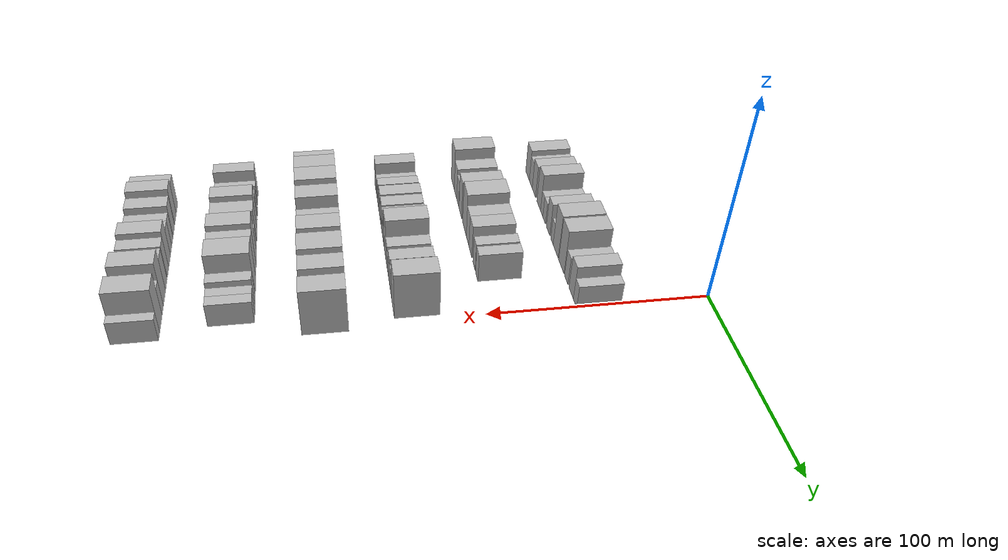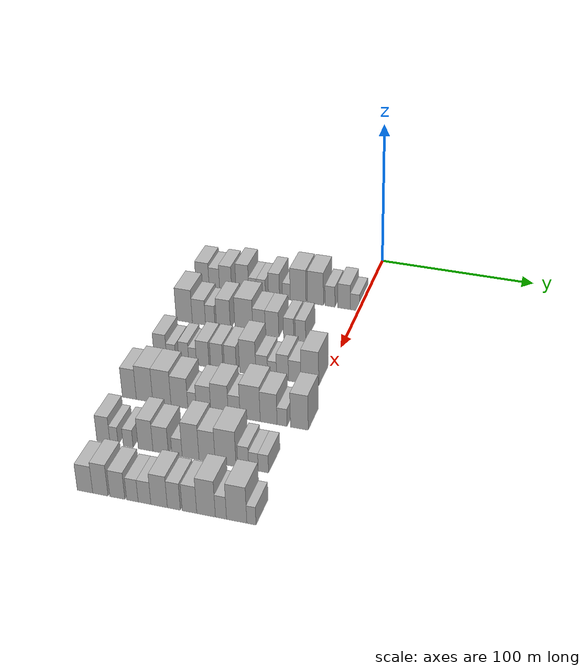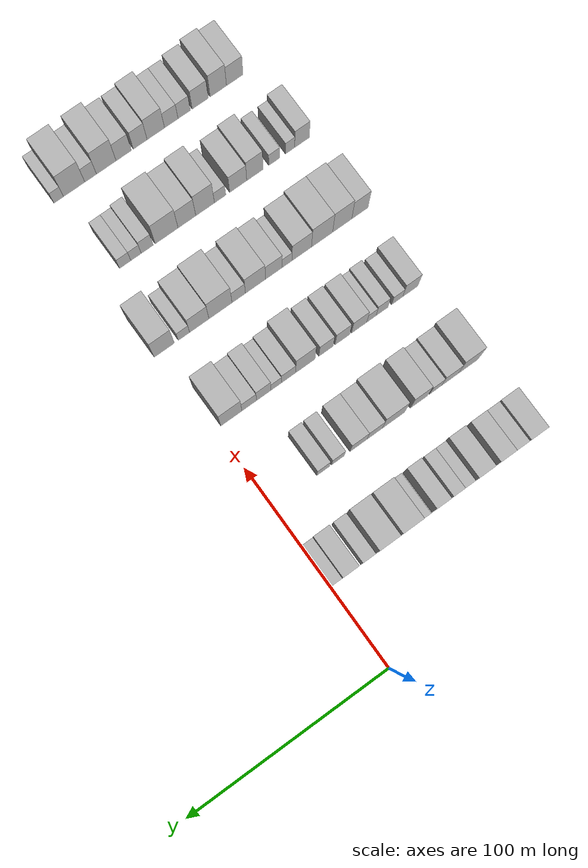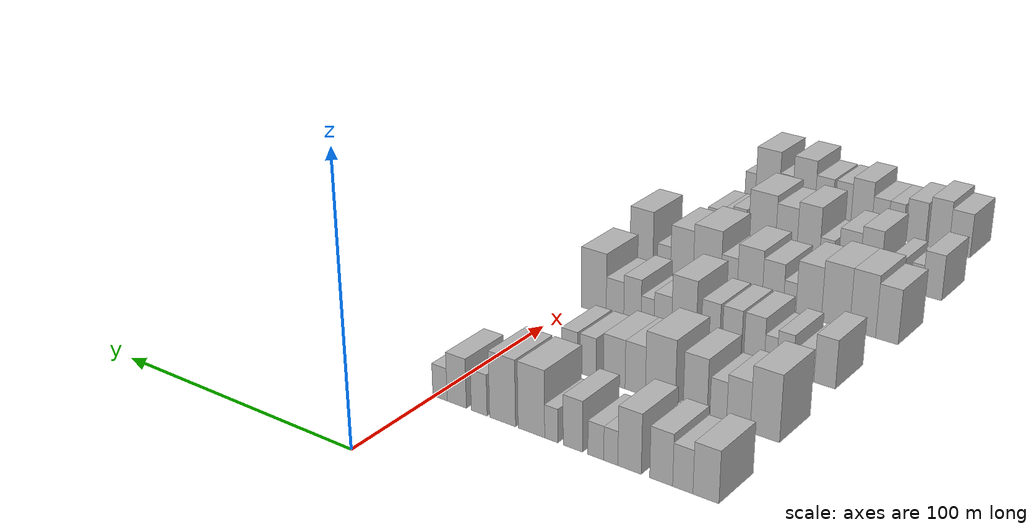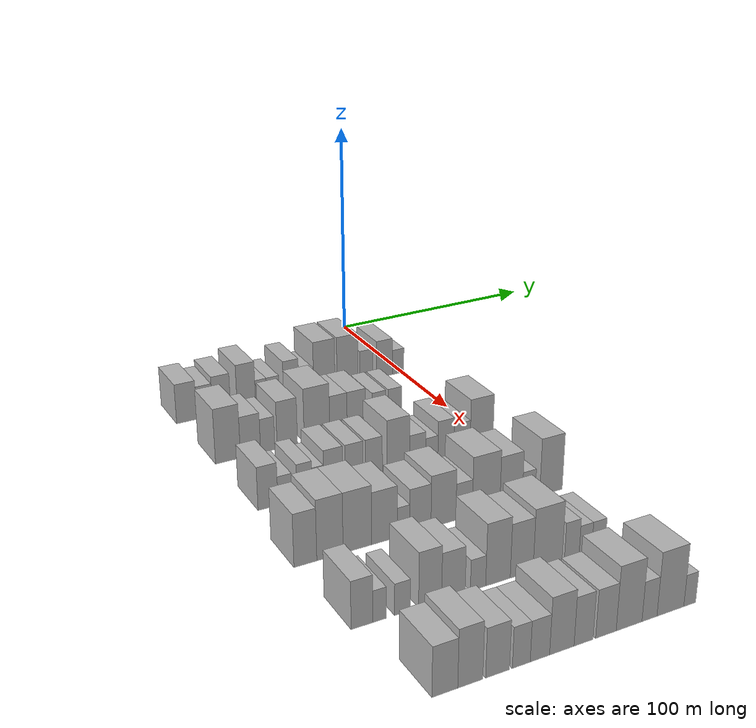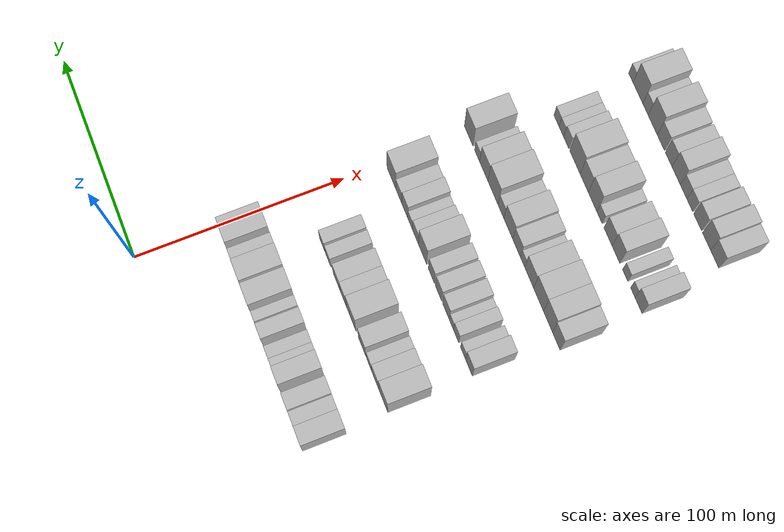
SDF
<sdf version="1.6">
 <world name="default">
  <model name="building_60">
   <static>1</static>
   <pose>50.0000 -103.2407 0 0.000000 0.000000 0.000000</pose>
   <link name="link">
    <pose>0 0 9.00 0 0 0</pose>
    <collision name="collision"><geometry><box><size>20.0000 8.9354 18.0000</size></box></geometry></collision>
    <visual name="visual">
     <cast_shadows>0</cast_shadows>
     <geometry><box><size>20.0000 8.9354 18.0000</size></box></geometry>
     <material>
      <script>
       <uri>model://HANNAS_wall/materials/scripts</uri>
       <uri>model://HANNAS_wall/materials/textures</uri>
       <name>vrc/HANNAS_wall</name>
      </script>
     </material>
    </visual>
   </link>
  </model>
  <model name="building_61">
   <static>1</static>
   <pose>50.0000 -95.2319 0 0.000000 0.000000 0.000000</pose>
   <link name="link">
    <pose>0 0 7.50 0 0 0</pose>
    <collision name="collision"><geometry><box><size>20.0000 7.0822 15.0000</size></box></geometry></collision>
    <visual name="visual">
     <cast_shadows>0</cast_shadows>
     <geometry><box><size>20.0000 7.0822 15.0000</size></box></geometry>
     <material>
      <script>
       <uri>model://HANNAS_wall/materials/scripts</uri>
       <uri>model://HANNAS_wall/materials/textures</uri>
       <name>vrc/HANNAS_wall</name>
      </script>
     </material>
    </visual>
   </link>
  </model>
  <model name="building_62">
   <static>1</static>
   <pose>50.0000 -87.6271 0 0.000000 0.000000 0.000000</pose>
   <link name="link">
    <pose>0 0 9.00 0 0 0</pose>
    <collision name="collision"><geometry><box><size>20.0000 8.1273 18.0000</size></box></geometry></collision>
    <visual name="visual">
     <cast_shadows>0</cast_shadows>
     <geometry><box><size>20.0000 8.1273 18.0000</size></box></geometry>
     <material>
      <script>
       <uri>model://HANNAS_wall/materials/scripts</uri>
       <uri>model://HANNAS_wall/materials/textures</uri>
       <name>vrc/HANNAS_wall</name>
      </script>
     </material>
    </visual>
   </link>
  </model>
  <model name="building_63">
   <static>1</static>
   <pose>50.0000 -76.3106 0 0.000000 0.000000 0.000000</pose>
   <link name="link">
    <pose>0 0 10.50 0 0 0</pose>
    <collision name="collision"><geometry><box><size>20.0000 8.5056 21.0000</size></box></geometry></collision>
    <visual name="visual">
     <cast_shadows>0</cast_shadows>
     <geometry><box><size>20.0000 8.5056 21.0000</size></box></geometry>
     <material>
      <script>
       <uri>model://HANNAS_wall/materials/scripts</uri>
       <uri>model://HANNAS_wall/materials/textures</uri>
       <name>vrc/HANNAS_wall</name>
      </script>
     </material>
    </visual>
   </link>
  </model>
  <model name="building_64">
   <static>1</static>
   <pose>50.0000 -69.4651 0 0.000000 0.000000 0.000000</pose>
   <link name="link">
    <pose>0 0 6.00 0 0 0</pose>
    <collision name="collision"><geometry><box><size>20.0000 5.1854 12.0000</size></box></geometry></collision>
    <visual name="visual">
     <cast_shadows>0</cast_shadows>
     <geometry><box><size>20.0000 5.1854 12.0000</size></box></geometry>
     <material>
      <script>
       <uri>model://HANNAS_wall/materials/scripts</uri>
       <uri>model://HANNAS_wall/materials/textures</uri>
       <name>vrc/HANNAS_wall</name>
      </script>
     </material>
    </visual>
   </link>
  </model>
  <model name="building_65">
   <static>1</static>
   <pose>50.0000 -63.9179 0 0.000000 0.000000 0.000000</pose>
   <link name="link">
    <pose>0 0 6.00 0 0 0</pose>
    <collision name="collision"><geometry><box><size>20.0000 5.9090 12.0000</size></box></geometry></collision>
    <visual name="visual">
     <cast_shadows>0</cast_shadows>
     <geometry><box><size>20.0000 5.9090 12.0000</size></box></geometry>
     <material>
      <script>
       <uri>model://HANNAS_wall/materials/scripts</uri>
       <uri>model://HANNAS_wall/materials/textures</uri>
       <name>vrc/HANNAS_wall</name>
      </script>
     </material>
    </visual>
   </link>
  </model>
  <model name="building_66">
   <static>1</static>
   <pose>50.0000 -55.3092 0 0.000000 0.000000 0.000000</pose>
   <link name="link">
    <pose>0 0 9.00 0 0 0</pose>
    <collision name="collision"><geometry><box><size>20.0000 7.3085 18.0000</size></box></geometry></collision>
    <visual name="visual">
     <cast_shadows>0</cast_shadows>
     <geometry><box><size>20.0000 7.3085 18.0000</size></box></geometry>
     <material>
      <script>
       <uri>model://HANNAS_wall/materials/scripts</uri>
       <uri>model://HANNAS_wall/materials/textures</uri>
       <name>vrc/HANNAS_wall</name>
      </script>
     </material>
    </visual>
   </link>
  </model>
  <model name="building_67">
   <static>1</static>
   <pose>50.0000 -47.1022 0 0.000000 0.000000 0.000000</pose>
   <link name="link">
    <pose>0 0 6.00 0 0 0</pose>
    <collision name="collision"><geometry><box><size>20.0000 5.1056 12.0000</size></box></geometry></collision>
    <visual name="visual">
     <cast_shadows>0</cast_shadows>
     <geometry><box><size>20.0000 5.1056 12.0000</size></box></geometry>
     <material>
      <script>
       <uri>model://HANNAS_wall/materials/scripts</uri>
       <uri>model://HANNAS_wall/materials/textures</uri>
       <name>vrc/HANNAS_wall</name>
      </script>
     </material>
    </visual>
   </link>
  </model>
  <model name="building_68">
   <static>1</static>
   <pose>50.0000 -39.3623 0 0.000000 0.000000 0.000000</pose>
   <link name="link">
    <pose>0 0 12.00 0 0 0</pose>
    <collision name="collision"><geometry><box><size>20.0000 10.3742 24.0000</size></box></geometry></collision>
    <visual name="visual">
     <cast_shadows>0</cast_shadows>
     <geometry><box><size>20.0000 10.3742 24.0000</size></box></geometry>
     <material>
      <script>
       <uri>model://HANNAS_wall/materials/scripts</uri>
       <uri>model://HANNAS_wall/materials/textures</uri>
       <name>vrc/HANNAS_wall</name>
      </script>
     </material>
    </visual>
   </link>
  </model>
  <model name="building_69">
   <static>1</static>
   <pose>50.0000 -27.9821 0 0.000000 0.000000 0.000000</pose>
   <link name="link">
    <pose>0 0 12.00 0 0 0</pose>
    <collision name="collision"><geometry><box><size>20.0000 10.3862 24.0000</size></box></geometry></collision>
    <visual name="visual">
     <cast_shadows>0</cast_shadows>
     <geometry><box><size>20.0000 10.3862 24.0000</size></box></geometry>
     <material>
      <script>
       <uri>model://HANNAS_wall/materials/scripts</uri>
       <uri>model://HANNAS_wall/materials/textures</uri>
       <name>vrc/HANNAS_wall</name>
      </script>
     </material>
    </visual>
   </link>
  </model>
  <model name="building_70">
   <static>1</static>
   <pose>50.0000 -18.5754 0 0.000000 0.000000 0.000000</pose>
   <link name="link">
    <pose>0 0 7.50 0 0 0</pose>
    <collision name="collision"><geometry><box><size>20.0000 6.4273 15.0000</size></box></geometry></collision>
    <visual name="visual">
     <cast_shadows>0</cast_shadows>
     <geometry><box><size>20.0000 6.4273 15.0000</size></box></geometry>
     <material>
      <script>
       <uri>model://HANNAS_wall/materials/scripts</uri>
       <uri>model://HANNAS_wall/materials/textures</uri>
       <name>vrc/HANNAS_wall</name>
      </script>
     </material>
    </visual>
   </link>
  </model>
  <model name="building_71">
   <static>1</static>
   <pose>50.0000 -9.3694 0 0.000000 0.000000 0.000000</pose>
   <link name="link">
    <pose>0 0 9.00 0 0 0</pose>
    <collision name="collision"><geometry><box><size>20.0000 7.9848 18.0000</size></box></geometry></collision>
    <visual name="visual">
     <cast_shadows>0</cast_shadows>
     <geometry><box><size>20.0000 7.9848 18.0000</size></box></geometry>
     <material>
      <script>
       <uri>model://HANNAS_wall/materials/scripts</uri>
       <uri>model://HANNAS_wall/materials/textures</uri>
       <name>vrc/HANNAS_wall</name>
      </script>
     </material>
    </visual>
   </link>
  </model>
  <model name="building_72">
   <static>1</static>
   <pose>50.0000 -2.3783 0 0.000000 0.000000 0.000000</pose>
   <link name="link">
    <pose>0 0 6.00 0 0 0</pose>
    <collision name="collision"><geometry><box><size>20.0000 5.9974 12.0000</size></box></geometry></collision>
    <visual name="visual">
     <cast_shadows>0</cast_shadows>
     <geometry><box><size>20.0000 5.9974 12.0000</size></box></geometry>
     <material>
      <script>
       <uri>model://HANNAS_wall/materials/scripts</uri>
       <uri>model://HANNAS_wall/materials/textures</uri>
       <name>vrc/HANNAS_wall</name>
      </script>
     </material>
    </visual>
   </link>
  </model>
  <model name="building_200">
   <static>1</static>
   <pose>90.0000 -100.3583 0 0.000000 0.000000 0.000000</pose>
   <link name="link">
    <pose>0 0 12.00 0 0 0</pose>
    <collision name="collision"><geometry><box><size>20.0000 10.5237 24.0000</size></box></geometry></collision>
    <visual name="visual">
     <cast_shadows>0</cast_shadows>
     <geometry><box><size>20.0000 10.5237 24.0000</size></box></geometry>
     <material>
      <script>
       <uri>model://HANNAS_wall/materials/scripts</uri>
       <uri>model://HANNAS_wall/materials/textures</uri>
       <name>vrc/HANNAS_wall</name>
      </script>
     </material>
    </visual>
   </link>
  </model>
  <model name="building_201">
   <static>1</static>
   <pose>90.0000 -90.7928 0 0.000000 0.000000 0.000000</pose>
   <link name="link">
    <pose>0 0 9.00 0 0 0</pose>
    <collision name="collision"><geometry><box><size>20.0000 8.6073 18.0000</size></box></geometry></collision>
    <visual name="visual">
     <cast_shadows>0</cast_shadows>
     <geometry><box><size>20.0000 8.6073 18.0000</size></box></geometry>
     <material>
      <script>
       <uri>model://HANNAS_wall/materials/scripts</uri>
       <uri>model://HANNAS_wall/materials/textures</uri>
       <name>vrc/HANNAS_wall</name>
      </script>
     </material>
    </visual>
   </link>
  </model>
  <model name="building_202">
   <static>1</static>
   <pose>90.0000 -83.4027 0 0.000000 0.000000 0.000000</pose>
   <link name="link">
    <pose>0 0 7.50 0 0 0</pose>
    <collision name="collision"><geometry><box><size>20.0000 6.1730 15.0000</size></box></geometry></collision>
    <visual name="visual">
     <cast_shadows>0</cast_shadows>
     <geometry><box><size>20.0000 6.1730 15.0000</size></box></geometry>
     <material>
      <script>
       <uri>model://HANNAS_wall/materials/scripts</uri>
       <uri>model://HANNAS_wall/materials/textures</uri>
       <name>vrc/HANNAS_wall</name>
      </script>
     </material>
    </visual>
   </link>
  </model>
  <model name="building_203">
   <static>1</static>
   <pose>90.0000 -74.8370 0 0.000000 0.000000 0.000000</pose>
   <link name="link">
    <pose>0 0 10.50 0 0 0</pose>
    <collision name="collision"><geometry><box><size>20.0000 8.9585 21.0000</size></box></geometry></collision>
    <visual name="visual">
     <cast_shadows>0</cast_shadows>
     <geometry><box><size>20.0000 8.9585 21.0000</size></box></geometry>
     <material>
      <script>
       <uri>model://HANNAS_wall/materials/scripts</uri>
       <uri>model://HANNAS_wall/materials/textures</uri>
       <name>vrc/HANNAS_wall</name>
      </script>
     </material>
    </visual>
   </link>
  </model>
  <model name="building_204">
   <static>1</static>
   <pose>90.0000 -61.6025 0 0.000000 0.000000 0.000000</pose>
   <link name="link">
    <pose>0 0 12.00 0 0 0</pose>
    <collision name="collision"><geometry><box><size>20.0000 11.5105 24.0000</size></box></geometry></collision>
    <visual name="visual">
     <cast_shadows>0</cast_shadows>
     <geometry><box><size>20.0000 11.5105 24.0000</size></box></geometry>
     <material>
      <script>
       <uri>model://HANNAS_wall/materials/scripts</uri>
       <uri>model://HANNAS_wall/materials/textures</uri>
       <name>vrc/HANNAS_wall</name>
      </script>
     </material>
    </visual>
   </link>
  </model>
  <model name="building_205">
   <static>1</static>
   <pose>90.0000 -51.8726 0 0.000000 0.000000 0.000000</pose>
   <link name="link">
    <pose>0 0 9.00 0 0 0</pose>
    <collision name="collision"><geometry><box><size>20.0000 7.9492 18.0000</size></box></geometry></collision>
    <visual name="visual">
     <cast_shadows>0</cast_shadows>
     <geometry><box><size>20.0000 7.9492 18.0000</size></box></geometry>
     <material>
      <script>
       <uri>model://HANNAS_wall/materials/scripts</uri>
       <uri>model://HANNAS_wall/materials/textures</uri>
       <name>vrc/HANNAS_wall</name>
      </script>
     </material>
    </visual>
   </link>
  </model>
  <model name="building_206">
   <static>1</static>
   <pose>90.0000 -43.5970 0 0.000000 0.000000 0.000000</pose>
   <link name="link">
    <pose>0 0 9.00 0 0 0</pose>
    <collision name="collision"><geometry><box><size>20.0000 8.6021 18.0000</size></box></geometry></collision>
    <visual name="visual">
     <cast_shadows>0</cast_shadows>
     <geometry><box><size>20.0000 8.6021 18.0000</size></box></geometry>
     <material>
      <script>
       <uri>model://HANNAS_wall/materials/scripts</uri>
       <uri>model://HANNAS_wall/materials/textures</uri>
       <name>vrc/HANNAS_wall</name>
      </script>
     </material>
    </visual>
   </link>
  </model>
  <model name="building_207">
   <static>1</static>
   <pose>90.0000 -33.0551 0 0.000000 0.000000 0.000000</pose>
   <link name="link">
    <pose>0 0 7.50 0 0 0</pose>
    <collision name="collision"><geometry><box><size>20.0000 6.4817 15.0000</size></box></geometry></collision>
    <visual name="visual">
     <cast_shadows>0</cast_shadows>
     <geometry><box><size>20.0000 6.4817 15.0000</size></box></geometry>
     <material>
      <script>
       <uri>model://HANNAS_wall/materials/scripts</uri>
       <uri>model://HANNAS_wall/materials/textures</uri>
       <name>vrc/HANNAS_wall</name>
      </script>
     </material>
    </visual>
   </link>
  </model>
  <model name="building_208">
   <static>1</static>
   <pose>90.0000 -25.5635 0 0.000000 0.000000 0.000000</pose>
   <link name="link">
    <pose>0 0 7.50 0 0 0</pose>
    <collision name="collision"><geometry><box><size>20.0000 6.5015 15.0000</size></box></geometry></collision>
    <visual name="visual">
     <cast_shadows>0</cast_shadows>
     <geometry><box><size>20.0000 6.5015 15.0000</size></box></geometry>
     <material>
      <script>
       <uri>model://HANNAS_wall/materials/scripts</uri>
       <uri>model://HANNAS_wall/materials/textures</uri>
       <name>vrc/HANNAS_wall</name>
      </script>
     </material>
    </visual>
   </link>
  </model>
  <model name="building_338">
   <static>1</static>
   <pose>130.0000 -100.2373 0 0.000000 0.000000 0.000000</pose>
   <link name="link">
    <pose>0 0 9.00 0 0 0</pose>
    <collision name="collision"><geometry><box><size>20.0000 7.9664 18.0000</size></box></geometry></collision>
    <visual name="visual">
     <cast_shadows>0</cast_shadows>
     <geometry><box><size>20.0000 7.9664 18.0000</size></box></geometry>
     <material>
      <script>
       <uri>model://HANNAS_wall/materials/scripts</uri>
       <uri>model://HANNAS_wall/materials/textures</uri>
       <name>vrc/HANNAS_wall</name>
      </script>
     </material>
    </visual>
   </link>
  </model>
  <model name="building_339">
   <static>1</static>
   <pose>130.0000 -93.3655 0 0.000000 0.000000 0.000000</pose>
   <link name="link">
    <pose>0 0 6.00 0 0 0</pose>
    <collision name="collision"><geometry><box><size>20.0000 5.7773 12.0000</size></box></geometry></collision>
    <visual name="visual">
     <cast_shadows>0</cast_shadows>
     <geometry><box><size>20.0000 5.7773 12.0000</size></box></geometry>
     <material>
      <script>
       <uri>model://HANNAS_wall/materials/scripts</uri>
       <uri>model://HANNAS_wall/materials/textures</uri>
       <name>vrc/HANNAS_wall</name>
      </script>
     </material>
    </visual>
   </link>
  </model>
  <model name="building_340">
   <static>1</static>
   <pose>130.0000 -85.3625 0 0.000000 0.000000 0.000000</pose>
   <link name="link">
    <pose>0 0 7.50 0 0 0</pose>
    <collision name="collision"><geometry><box><size>20.0000 6.2286 15.0000</size></box></geometry></collision>
    <visual name="visual">
     <cast_shadows>0</cast_shadows>
     <geometry><box><size>20.0000 6.2286 15.0000</size></box></geometry>
     <material>
      <script>
       <uri>model://HANNAS_wall/materials/scripts</uri>
       <uri>model://HANNAS_wall/materials/textures</uri>
       <name>vrc/HANNAS_wall</name>
      </script>
     </material>
    </visual>
   </link>
  </model>
  <model name="building_341">
   <static>1</static>
   <pose>130.0000 -79.8415 0 0.000000 0.000000 0.000000</pose>
   <link name="link">
    <pose>0 0 6.00 0 0 0</pose>
    <collision name="collision"><geometry><box><size>20.0000 4.8134 12.0000</size></box></geometry></collision>
    <visual name="visual">
     <cast_shadows>0</cast_shadows>
     <geometry><box><size>20.0000 4.8134 12.0000</size></box></geometry>
     <material>
      <script>
       <uri>model://HANNAS_wall/materials/scripts</uri>
       <uri>model://HANNAS_wall/materials/textures</uri>
       <name>vrc/HANNAS_wall</name>
      </script>
     </material>
    </visual>
   </link>
  </model>
  <model name="building_342">
   <static>1</static>
   <pose>130.0000 -73.4762 0 0.000000 0.000000 0.000000</pose>
   <link name="link">
    <pose>0 0 9.00 0 0 0</pose>
    <collision name="collision"><geometry><box><size>20.0000 7.9172 18.0000</size></box></geometry></collision>
    <visual name="visual">
     <cast_shadows>0</cast_shadows>
     <geometry><box><size>20.0000 7.9172 18.0000</size></box></geometry>
     <material>
      <script>
       <uri>model://HANNAS_wall/materials/scripts</uri>
       <uri>model://HANNAS_wall/materials/textures</uri>
       <name>vrc/HANNAS_wall</name>
      </script>
     </material>
    </visual>
   </link>
  </model>
  <model name="building_343">
   <static>1</static>
   <pose>130.0000 -64.7259 0 0.000000 0.000000 0.000000</pose>
   <link name="link">
    <pose>0 0 9.00 0 0 0</pose>
    <collision name="collision"><geometry><box><size>20.0000 7.5834 18.0000</size></box></geometry></collision>
    <visual name="visual">
     <cast_shadows>0</cast_shadows>
     <geometry><box><size>20.0000 7.5834 18.0000</size></box></geometry>
     <material>
      <script>
       <uri>model://HANNAS_wall/materials/scripts</uri>
       <uri>model://HANNAS_wall/materials/textures</uri>
       <name>vrc/HANNAS_wall</name>
      </script>
     </material>
    </visual>
   </link>
  </model>
  <model name="building_344">
   <static>1</static>
   <pose>130.0000 -56.2506 0 0.000000 0.000000 0.000000</pose>
   <link name="link">
    <pose>0 0 9.00 0 0 0</pose>
    <collision name="collision"><geometry><box><size>20.0000 7.3673 18.0000</size></box></geometry></collision>
    <visual name="visual">
     <cast_shadows>0</cast_shadows>
     <geometry><box><size>20.0000 7.3673 18.0000</size></box></geometry>
     <material>
      <script>
       <uri>model://HANNAS_wall/materials/scripts</uri>
       <uri>model://HANNAS_wall/materials/textures</uri>
       <name>vrc/HANNAS_wall</name>
      </script>
     </material>
    </visual>
   </link>
  </model>
  <model name="building_345">
   <static>1</static>
   <pose>130.0000 -45.5575 0 0.000000 0.000000 0.000000</pose>
   <link name="link">
    <pose>0 0 12.00 0 0 0</pose>
    <collision name="collision"><geometry><box><size>20.0000 10.0188 24.0000</size></box></geometry></collision>
    <visual name="visual">
     <cast_shadows>0</cast_shadows>
     <geometry><box><size>20.0000 10.0188 24.0000</size></box></geometry>
     <material>
      <script>
       <uri>model://HANNAS_wall/materials/scripts</uri>
       <uri>model://HANNAS_wall/materials/textures</uri>
       <name>vrc/HANNAS_wall</name>
      </script>
     </material>
    </visual>
   </link>
  </model>
  <model name="building_346">
   <static>1</static>
   <pose>130.0000 -36.9339 0 0.000000 0.000000 0.000000</pose>
   <link name="link">
    <pose>0 0 7.50 0 0 0</pose>
    <collision name="collision"><geometry><box><size>20.0000 7.2285 15.0000</size></box></geometry></collision>
    <visual name="visual">
     <cast_shadows>0</cast_shadows>
     <geometry><box><size>20.0000 7.2285 15.0000</size></box></geometry>
     <material>
      <script>
       <uri>model://HANNAS_wall/materials/scripts</uri>
       <uri>model://HANNAS_wall/materials/textures</uri>
       <name>vrc/HANNAS_wall</name>
      </script>
     </material>
    </visual>
   </link>
  </model>
  <model name="building_347">
   <static>1</static>
   <pose>130.0000 -30.5949 0 0.000000 0.000000 0.000000</pose>
   <link name="link">
    <pose>0 0 6.00 0 0 0</pose>
    <collision name="collision"><geometry><box><size>20.0000 5.4495 12.0000</size></box></geometry></collision>
    <visual name="visual">
     <cast_shadows>0</cast_shadows>
     <geometry><box><size>20.0000 5.4495 12.0000</size></box></geometry>
     <material>
      <script>
       <uri>model://HANNAS_wall/materials/scripts</uri>
       <uri>model://HANNAS_wall/materials/textures</uri>
       <name>vrc/HANNAS_wall</name>
      </script>
     </material>
    </visual>
   </link>
  </model>
  <model name="building_348">
   <static>1</static>
   <pose>130.0000 -24.2174 0 0.000000 0.000000 0.000000</pose>
   <link name="link">
    <pose>0 0 9.00 0 0 0</pose>
    <collision name="collision"><geometry><box><size>20.0000 7.3055 18.0000</size></box></geometry></collision>
    <visual name="visual">
     <cast_shadows>0</cast_shadows>
     <geometry><box><size>20.0000 7.3055 18.0000</size></box></geometry>
     <material>
      <script>
       <uri>model://HANNAS_wall/materials/scripts</uri>
       <uri>model://HANNAS_wall/materials/textures</uri>
       <name>vrc/HANNAS_wall</name>
      </script>
     </material>
    </visual>
   </link>
  </model>
  <model name="building_349">
   <static>1</static>
   <pose>130.0000 -16.8157 0 0.000000 0.000000 0.000000</pose>
   <link name="link">
    <pose>0 0 7.50 0 0 0</pose>
    <collision name="collision"><geometry><box><size>20.0000 7.4980 15.0000</size></box></geometry></collision>
    <visual name="visual">
     <cast_shadows>0</cast_shadows>
     <geometry><box><size>20.0000 7.4980 15.0000</size></box></geometry>
     <material>
      <script>
       <uri>model://HANNAS_wall/materials/scripts</uri>
       <uri>model://HANNAS_wall/materials/textures</uri>
       <name>vrc/HANNAS_wall</name>
      </script>
     </material>
    </visual>
   </link>
  </model>
  <model name="building_350">
   <static>1</static>
   <pose>130.0000 -7.6784 0 0.000000 0.000000 0.000000</pose>
   <link name="link">
    <pose>0 0 12.00 0 0 0</pose>
    <collision name="collision"><geometry><box><size>20.0000 10.7765 24.0000</size></box></geometry></collision>
    <visual name="visual">
     <cast_shadows>0</cast_shadows>
     <geometry><box><size>20.0000 10.7765 24.0000</size></box></geometry>
     <material>
      <script>
       <uri>model://HANNAS_wall/materials/scripts</uri>
       <uri>model://HANNAS_wall/materials/textures</uri>
       <name>vrc/HANNAS_wall</name>
      </script>
     </material>
    </visual>
   </link>
  </model>
  <model name="building_483">
   <static>1</static>
   <pose>170.0000 -103.3558 0 0.000000 0.000000 0.000000</pose>
   <link name="link">
    <pose>0 0 10.50 0 0 0</pose>
    <collision name="collision"><geometry><box><size>20.0000 8.5857 21.0000</size></box></geometry></collision>
    <visual name="visual">
     <cast_shadows>0</cast_shadows>
     <geometry><box><size>20.0000 8.5857 21.0000</size></box></geometry>
     <material>
      <script>
       <uri>model://HANNAS_wall/materials/scripts</uri>
       <uri>model://HANNAS_wall/materials/textures</uri>
       <name>vrc/HANNAS_wall</name>
      </script>
     </material>
    </visual>
   </link>
  </model>
  <model name="building_484">
   <static>1</static>
   <pose>170.0000 -94.0310 0 0.000000 0.000000 0.000000</pose>
   <link name="link">
    <pose>0 0 12.00 0 0 0</pose>
    <collision name="collision"><geometry><box><size>20.0000 10.0638 24.0000</size></box></geometry></collision>
    <visual name="visual">
     <cast_shadows>0</cast_shadows>
     <geometry><box><size>20.0000 10.0638 24.0000</size></box></geometry>
     <material>
      <script>
       <uri>model://HANNAS_wall/materials/scripts</uri>
       <uri>model://HANNAS_wall/materials/textures</uri>
       <name>vrc/HANNAS_wall</name>
      </script>
     </material>
    </visual>
   </link>
  </model>
  <model name="building_485">
   <static>1</static>
   <pose>170.0000 -83.4379 0 0.000000 0.000000 0.000000</pose>
   <link name="link">
    <pose>0 0 12.00 0 0 0</pose>
    <collision name="collision"><geometry><box><size>20.0000 11.1224 24.0000</size></box></geometry></collision>
    <visual name="visual">
     <cast_shadows>0</cast_shadows>
     <geometry><box><size>20.0000 11.1224 24.0000</size></box></geometry>
     <material>
      <script>
       <uri>model://HANNAS_wall/materials/scripts</uri>
       <uri>model://HANNAS_wall/materials/textures</uri>
       <name>vrc/HANNAS_wall</name>
      </script>
     </material>
    </visual>
   </link>
  </model>
  <model name="building_486">
   <static>1</static>
   <pose>170.0000 -72.7894 0 0.000000 0.000000 0.000000</pose>
   <link name="link">
    <pose>0 0 10.50 0 0 0</pose>
    <collision name="collision"><geometry><box><size>20.0000 10.1747 21.0000</size></box></geometry></collision>
    <visual name="visual">
     <cast_shadows>0</cast_shadows>
     <geometry><box><size>20.0000 10.1747 21.0000</size></box></geometry>
     <material>
      <script>
       <uri>model://HANNAS_wall/materials/scripts</uri>
       <uri>model://HANNAS_wall/materials/textures</uri>
       <name>vrc/HANNAS_wall</name>
      </script>
     </material>
    </visual>
   </link>
  </model>
  <model name="building_487">
   <static>1</static>
   <pose>170.0000 -65.1522 0 0.000000 0.000000 0.000000</pose>
   <link name="link">
    <pose>0 0 6.00 0 0 0</pose>
    <collision name="collision"><geometry><box><size>20.0000 5.0997 12.0000</size></box></geometry></collision>
    <visual name="visual">
     <cast_shadows>0</cast_shadows>
     <geometry><box><size>20.0000 5.0997 12.0000</size></box></geometry>
     <material>
      <script>
       <uri>model://HANNAS_wall/materials/scripts</uri>
       <uri>model://HANNAS_wall/materials/textures</uri>
       <name>vrc/HANNAS_wall</name>
      </script>
     </material>
    </visual>
   </link>
  </model>
  <model name="building_488">
   <static>1</static>
   <pose>170.0000 -58.2481 0 0.000000 0.000000 0.000000</pose>
   <link name="link">
    <pose>0 0 9.00 0 0 0</pose>
    <collision name="collision"><geometry><box><size>20.0000 8.7086 18.0000</size></box></geometry></collision>
    <visual name="visual">
     <cast_shadows>0</cast_shadows>
     <geometry><box><size>20.0000 8.7086 18.0000</size></box></geometry>
     <material>
      <script>
       <uri>model://HANNAS_wall/materials/scripts</uri>
       <uri>model://HANNAS_wall/materials/textures</uri>
       <name>vrc/HANNAS_wall</name>
      </script>
     </material>
    </visual>
   </link>
  </model>
  <model name="building_489">
   <static>1</static>
   <pose>170.0000 -48.6879 0 0.000000 0.000000 0.000000</pose>
   <link name="link">
    <pose>0 0 10.50 0 0 0</pose>
    <collision name="collision"><geometry><box><size>20.0000 10.4119 21.0000</size></box></geometry></collision>
    <visual name="visual">
     <cast_shadows>0</cast_shadows>
     <geometry><box><size>20.0000 10.4119 21.0000</size></box></geometry>
     <material>
      <script>
       <uri>model://HANNAS_wall/materials/scripts</uri>
       <uri>model://HANNAS_wall/materials/textures</uri>
       <name>vrc/HANNAS_wall</name>
      </script>
     </material>
    </visual>
   </link>
  </model>
  <model name="building_490">
   <static>1</static>
   <pose>170.0000 -40.0093 0 0.000000 0.000000 0.000000</pose>
   <link name="link">
    <pose>0 0 7.50 0 0 0</pose>
    <collision name="collision"><geometry><box><size>20.0000 6.9453 15.0000</size></box></geometry></collision>
    <visual name="visual">
     <cast_shadows>0</cast_shadows>
     <geometry><box><size>20.0000 6.9453 15.0000</size></box></geometry>
     <material>
      <script>
       <uri>model://HANNAS_wall/materials/scripts</uri>
       <uri>model://HANNAS_wall/materials/textures</uri>
       <name>vrc/HANNAS_wall</name>
      </script>
     </material>
    </visual>
   </link>
  </model>
  <model name="building_491">
   <static>1</static>
   <pose>170.0000 -30.5840 0 0.000000 0.000000 0.000000</pose>
   <link name="link">
    <pose>0 0 12.00 0 0 0</pose>
    <collision name="collision"><geometry><box><size>20.0000 11.9053 24.0000</size></box></geometry></collision>
    <visual name="visual">
     <cast_shadows>0</cast_shadows>
     <geometry><box><size>20.0000 11.9053 24.0000</size></box></geometry>
     <material>
      <script>
       <uri>model://HANNAS_wall/materials/scripts</uri>
       <uri>model://HANNAS_wall/materials/textures</uri>
       <name>vrc/HANNAS_wall</name>
      </script>
     </material>
    </visual>
   </link>
  </model>
  <model name="building_492">
   <static>1</static>
   <pose>170.0000 -19.6812 0 0.000000 0.000000 0.000000</pose>
   <link name="link">
    <pose>0 0 10.50 0 0 0</pose>
    <collision name="collision"><geometry><box><size>20.0000 9.9003 21.0000</size></box></geometry></collision>
    <visual name="visual">
     <cast_shadows>0</cast_shadows>
     <geometry><box><size>20.0000 9.9003 21.0000</size></box></geometry>
     <material>
      <script>
       <uri>model://HANNAS_wall/materials/scripts</uri>
       <uri>model://HANNAS_wall/materials/textures</uri>
       <name>vrc/HANNAS_wall</name>
      </script>
     </material>
    </visual>
   </link>
  </model>
  <model name="building_493">
   <static>1</static>
   <pose>170.0000 -11.8165 0 0.000000 0.000000 0.000000</pose>
   <link name="link">
    <pose>0 0 6.00 0 0 0</pose>
    <collision name="collision"><geometry><box><size>20.0000 5.8291 12.0000</size></box></geometry></collision>
    <visual name="visual">
     <cast_shadows>0</cast_shadows>
     <geometry><box><size>20.0000 5.8291 12.0000</size></box></geometry>
     <material>
      <script>
       <uri>model://HANNAS_wall/materials/scripts</uri>
       <uri>model://HANNAS_wall/materials/textures</uri>
       <name>vrc/HANNAS_wall</name>
      </script>
     </material>
    </visual>
   </link>
  </model>
  <model name="building_494">
   <static>1</static>
   <pose>170.0000 -1.7432 0 0.000000 0.000000 0.000000</pose>
   <link name="link">
    <pose>0 0 12.00 0 0 0</pose>
    <collision name="collision"><geometry><box><size>20.0000 10.3176 24.0000</size></box></geometry></collision>
    <visual name="visual">
     <cast_shadows>0</cast_shadows>
     <geometry><box><size>20.0000 10.3176 24.0000</size></box></geometry>
     <material>
      <script>
       <uri>model://HANNAS_wall/materials/scripts</uri>
       <uri>model://HANNAS_wall/materials/textures</uri>
       <name>vrc/HANNAS_wall</name>
      </script>
     </material>
    </visual>
   </link>
  </model>
  <model name="building_632">
   <static>1</static>
   <pose>210.0000 -101.9433 0 0.000000 0.000000 0.000000</pose>
   <link name="link">
    <pose>0 0 9.00 0 0 0</pose>
    <collision name="collision"><geometry><box><size>20.0000 7.7523 18.0000</size></box></geometry></collision>
    <visual name="visual">
     <cast_shadows>0</cast_shadows>
     <geometry><box><size>20.0000 7.7523 18.0000</size></box></geometry>
     <material>
      <script>
       <uri>model://HANNAS_wall/materials/scripts</uri>
       <uri>model://HANNAS_wall/materials/textures</uri>
       <name>vrc/HANNAS_wall</name>
      </script>
     </material>
    </visual>
   </link>
  </model>
  <model name="building_633">
   <static>1</static>
   <pose>210.0000 -95.6482 0 0.000000 0.000000 0.000000</pose>
   <link name="link">
    <pose>0 0 6.00 0 0 0</pose>
    <collision name="collision"><geometry><box><size>20.0000 4.8377 12.0000</size></box></geometry></collision>
    <visual name="visual">
     <cast_shadows>0</cast_shadows>
     <geometry><box><size>20.0000 4.8377 12.0000</size></box></geometry>
     <material>
      <script>
       <uri>model://HANNAS_wall/materials/scripts</uri>
       <uri>model://HANNAS_wall/materials/textures</uri>
       <name>vrc/HANNAS_wall</name>
      </script>
     </material>
    </visual>
   </link>
  </model>
  <model name="building_634">
   <static>1</static>
   <pose>210.0000 -87.3192 0 0.000000 0.000000 0.000000</pose>
   <link name="link">
    <pose>0 0 6.00 0 0 0</pose>
    <collision name="collision"><geometry><box><size>20.0000 5.8203 12.0000</size></box></geometry></collision>
    <visual name="visual">
     <cast_shadows>0</cast_shadows>
     <geometry><box><size>20.0000 5.8203 12.0000</size></box></geometry>
     <material>
      <script>
       <uri>model://HANNAS_wall/materials/scripts</uri>
       <uri>model://HANNAS_wall/materials/textures</uri>
       <name>vrc/HANNAS_wall</name>
      </script>
     </material>
    </visual>
   </link>
  </model>
  <model name="building_635">
   <static>1</static>
   <pose>210.0000 -77.1032 0 0.000000 0.000000 0.000000</pose>
   <link name="link">
    <pose>0 0 10.50 0 0 0</pose>
    <collision name="collision"><geometry><box><size>20.0000 8.6116 21.0000</size></box></geometry></collision>
    <visual name="visual">
     <cast_shadows>0</cast_shadows>
     <geometry><box><size>20.0000 8.6116 21.0000</size></box></geometry>
     <material>
      <script>
       <uri>model://HANNAS_wall/materials/scripts</uri>
       <uri>model://HANNAS_wall/materials/textures</uri>
       <name>vrc/HANNAS_wall</name>
      </script>
     </material>
    </visual>
   </link>
  </model>
  <model name="building_636">
   <static>1</static>
   <pose>210.0000 -68.3052 0 0.000000 0.000000 0.000000</pose>
   <link name="link">
    <pose>0 0 9.00 0 0 0</pose>
    <collision name="collision"><geometry><box><size>20.0000 8.9843 18.0000</size></box></geometry></collision>
    <visual name="visual">
     <cast_shadows>0</cast_shadows>
     <geometry><box><size>20.0000 8.9843 18.0000</size></box></geometry>
     <material>
      <script>
       <uri>model://HANNAS_wall/materials/scripts</uri>
       <uri>model://HANNAS_wall/materials/textures</uri>
       <name>vrc/HANNAS_wall</name>
      </script>
     </material>
    </visual>
   </link>
  </model>
  <model name="building_637">
   <static>1</static>
   <pose>210.0000 -58.8360 0 0.000000 0.000000 0.000000</pose>
   <link name="link">
    <pose>0 0 6.00 0 0 0</pose>
    <collision name="collision"><geometry><box><size>20.0000 5.9542 12.0000</size></box></geometry></collision>
    <visual name="visual">
     <cast_shadows>0</cast_shadows>
     <geometry><box><size>20.0000 5.9542 12.0000</size></box></geometry>
     <material>
      <script>
       <uri>model://HANNAS_wall/materials/scripts</uri>
       <uri>model://HANNAS_wall/materials/textures</uri>
       <name>vrc/HANNAS_wall</name>
      </script>
     </material>
    </visual>
   </link>
  </model>
  <model name="building_638">
   <static>1</static>
   <pose>210.0000 -50.9959 0 0.000000 0.000000 0.000000</pose>
   <link name="link">
    <pose>0 0 12.00 0 0 0</pose>
    <collision name="collision"><geometry><box><size>20.0000 9.7260 24.0000</size></box></geometry></collision>
    <visual name="visual">
     <cast_shadows>0</cast_shadows>
     <geometry><box><size>20.0000 9.7260 24.0000</size></box></geometry>
     <material>
      <script>
       <uri>model://HANNAS_wall/materials/scripts</uri>
       <uri>model://HANNAS_wall/materials/textures</uri>
       <name>vrc/HANNAS_wall</name>
      </script>
     </material>
    </visual>
   </link>
  </model>
  <model name="building_639">
   <static>1</static>
   <pose>210.0000 -41.5213 0 0.000000 0.000000 0.000000</pose>
   <link name="link">
    <pose>0 0 10.50 0 0 0</pose>
    <collision name="collision"><geometry><box><size>20.0000 9.2232 21.0000</size></box></geometry></collision>
    <visual name="visual">
     <cast_shadows>0</cast_shadows>
     <geometry><box><size>20.0000 9.2232 21.0000</size></box></geometry>
     <material>
      <script>
       <uri>model://HANNAS_wall/materials/scripts</uri>
       <uri>model://HANNAS_wall/materials/textures</uri>
       <name>vrc/HANNAS_wall</name>
      </script>
     </material>
    </visual>
   </link>
  </model>
  <model name="building_640">
   <static>1</static>
   <pose>210.0000 -30.9567 0 0.000000 0.000000 0.000000</pose>
   <link name="link">
    <pose>0 0 12.00 0 0 0</pose>
    <collision name="collision"><geometry><box><size>20.0000 11.9060 24.0000</size></box></geometry></collision>
    <visual name="visual">
     <cast_shadows>0</cast_shadows>
     <geometry><box><size>20.0000 11.9060 24.0000</size></box></geometry>
     <material>
      <script>
       <uri>model://HANNAS_wall/materials/scripts</uri>
       <uri>model://HANNAS_wall/materials/textures</uri>
       <name>vrc/HANNAS_wall</name>
      </script>
     </material>
    </visual>
   </link>
  </model>
  <model name="building_641">
   <static>1</static>
   <pose>210.0000 -20.9171 0 0.000000 0.000000 0.000000</pose>
   <link name="link">
    <pose>0 0 7.50 0 0 0</pose>
    <collision name="collision"><geometry><box><size>20.0000 6.1732 15.0000</size></box></geometry></collision>
    <visual name="visual">
     <cast_shadows>0</cast_shadows>
     <geometry><box><size>20.0000 6.1732 15.0000</size></box></geometry>
     <material>
      <script>
       <uri>model://HANNAS_wall/materials/scripts</uri>
       <uri>model://HANNAS_wall/materials/textures</uri>
       <name>vrc/HANNAS_wall</name>
      </script>
     </material>
    </visual>
   </link>
  </model>
  <model name="building_642">
   <static>1</static>
   <pose>210.0000 -15.1462 0 0.000000 0.000000 0.000000</pose>
   <link name="link">
    <pose>0 0 6.00 0 0 0</pose>
    <collision name="collision"><geometry><box><size>20.0000 5.3686 12.0000</size></box></geometry></collision>
    <visual name="visual">
     <cast_shadows>0</cast_shadows>
     <geometry><box><size>20.0000 5.3686 12.0000</size></box></geometry>
     <material>
      <script>
       <uri>model://HANNAS_wall/materials/scripts</uri>
       <uri>model://HANNAS_wall/materials/textures</uri>
       <name>vrc/HANNAS_wall</name>
      </script>
     </material>
    </visual>
   </link>
  </model>
  <model name="building_643">
   <static>1</static>
   <pose>210.0000 -9.5655 0 0.000000 0.000000 0.000000</pose>
   <link name="link">
    <pose>0 0 6.00 0 0 0</pose>
    <collision name="collision"><geometry><box><size>20.0000 5.7930 12.0000</size></box></geometry></collision>
    <visual name="visual">
     <cast_shadows>0</cast_shadows>
     <geometry><box><size>20.0000 5.7930 12.0000</size></box></geometry>
     <material>
      <script>
       <uri>model://HANNAS_wall/materials/scripts</uri>
       <uri>model://HANNAS_wall/materials/textures</uri>
       <name>vrc/HANNAS_wall</name>
      </script>
     </material>
    </visual>
   </link>
  </model>
  <model name="building_771">
   <static>1</static>
   <pose>250.0000 -95.0258 0 0.000000 0.000000 0.000000</pose>
   <link name="link">
    <pose>0 0 9.00 0 0 0</pose>
    <collision name="collision"><geometry><box><size>20.0000 8.7857 18.0000</size></box></geometry></collision>
    <visual name="visual">
     <cast_shadows>0</cast_shadows>
     <geometry><box><size>20.0000 8.7857 18.0000</size></box></geometry>
     <material>
      <script>
       <uri>model://HANNAS_wall/materials/scripts</uri>
       <uri>model://HANNAS_wall/materials/textures</uri>
       <name>vrc/HANNAS_wall</name>
      </script>
     </material>
    </visual>
   </link>
  </model>
  <model name="building_772">
   <static>1</static>
   <pose>250.0000 -86.2995 0 0.000000 0.000000 0.000000</pose>
   <link name="link">
    <pose>0 0 10.50 0 0 0</pose>
    <collision name="collision"><geometry><box><size>20.0000 8.6670 21.0000</size></box></geometry></collision>
    <visual name="visual">
     <cast_shadows>0</cast_shadows>
     <geometry><box><size>20.0000 8.6670 21.0000</size></box></geometry>
     <material>
      <script>
       <uri>model://HANNAS_wall/materials/scripts</uri>
       <uri>model://HANNAS_wall/materials/textures</uri>
       <name>vrc/HANNAS_wall</name>
      </script>
     </material>
    </visual>
   </link>
  </model>
  <model name="building_773">
   <static>1</static>
   <pose>250.0000 -76.7271 0 0.000000 0.000000 0.000000</pose>
   <link name="link">
    <pose>0 0 9.00 0 0 0</pose>
    <collision name="collision"><geometry><box><size>20.0000 8.4777 18.0000</size></box></geometry></collision>
    <visual name="visual">
     <cast_shadows>0</cast_shadows>
     <geometry><box><size>20.0000 8.4777 18.0000</size></box></geometry>
     <material>
      <script>
       <uri>model://HANNAS_wall/materials/scripts</uri>
       <uri>model://HANNAS_wall/materials/textures</uri>
       <name>vrc/HANNAS_wall</name>
      </script>
     </material>
    </visual>
   </link>
  </model>
  <model name="building_774">
   <static>1</static>
   <pose>250.0000 -68.2557 0 0.000000 0.000000 0.000000</pose>
   <link name="link">
    <pose>0 0 7.50 0 0 0</pose>
    <collision name="collision"><geometry><box><size>20.0000 6.4651 15.0000</size></box></geometry></collision>
    <visual name="visual">
     <cast_shadows>0</cast_shadows>
     <geometry><box><size>20.0000 6.4651 15.0000</size></box></geometry>
     <material>
      <script>
       <uri>model://HANNAS_wall/materials/scripts</uri>
       <uri>model://HANNAS_wall/materials/textures</uri>
       <name>vrc/HANNAS_wall</name>
      </script>
     </material>
    </visual>
   </link>
  </model>
  <model name="building_775">
   <static>1</static>
   <pose>250.0000 -61.4706 0 0.000000 0.000000 0.000000</pose>
   <link name="link">
    <pose>0 0 7.50 0 0 0</pose>
    <collision name="collision"><geometry><box><size>20.0000 7.1051 15.0000</size></box></geometry></collision>
    <visual name="visual">
     <cast_shadows>0</cast_shadows>
     <geometry><box><size>20.0000 7.1051 15.0000</size></box></geometry>
     <material>
      <script>
       <uri>model://HANNAS_wall/materials/scripts</uri>
       <uri>model://HANNAS_wall/materials/textures</uri>
       <name>vrc/HANNAS_wall</name>
      </script>
     </material>
    </visual>
   </link>
  </model>
  <model name="building_776">
   <static>1</static>
   <pose>250.0000 -53.3486 0 0.000000 0.000000 0.000000</pose>
   <link name="link">
    <pose>0 0 10.50 0 0 0</pose>
    <collision name="collision"><geometry><box><size>20.0000 9.1389 21.0000</size></box></geometry></collision>
    <visual name="visual">
     <cast_shadows>0</cast_shadows>
     <geometry><box><size>20.0000 9.1389 21.0000</size></box></geometry>
     <material>
      <script>
       <uri>model://HANNAS_wall/materials/scripts</uri>
       <uri>model://HANNAS_wall/materials/textures</uri>
       <name>vrc/HANNAS_wall</name>
      </script>
     </material>
    </visual>
   </link>
  </model>
  <model name="building_777">
   <static>1</static>
   <pose>250.0000 -45.1671 0 0.000000 0.000000 0.000000</pose>
   <link name="link">
    <pose>0 0 9.00 0 0 0</pose>
    <collision name="collision"><geometry><box><size>20.0000 7.2239 18.0000</size></box></geometry></collision>
    <visual name="visual">
     <cast_shadows>0</cast_shadows>
     <geometry><box><size>20.0000 7.2239 18.0000</size></box></geometry>
     <material>
      <script>
       <uri>model://HANNAS_wall/materials/scripts</uri>
       <uri>model://HANNAS_wall/materials/textures</uri>
       <name>vrc/HANNAS_wall</name>
      </script>
     </material>
    </visual>
   </link>
  </model>
  <model name="building_778">
   <static>1</static>
   <pose>250.0000 -36.5669 0 0.000000 0.000000 0.000000</pose>
   <link name="link">
    <pose>0 0 9.00 0 0 0</pose>
    <collision name="collision"><geometry><box><size>20.0000 7.9765 18.0000</size></box></geometry></collision>
    <visual name="visual">
     <cast_shadows>0</cast_shadows>
     <geometry><box><size>20.0000 7.9765 18.0000</size></box></geometry>
     <material>
      <script>
       <uri>model://HANNAS_wall/materials/scripts</uri>
       <uri>model://HANNAS_wall/materials/textures</uri>
       <name>vrc/HANNAS_wall</name>
      </script>
     </material>
    </visual>
   </link>
  </model>
  <model name="building_779">
   <static>1</static>
   <pose>250.0000 -27.4742 0 0.000000 0.000000 0.000000</pose>
   <link name="link">
    <pose>0 0 12.00 0 0 0</pose>
    <collision name="collision"><geometry><box><size>20.0000 10.2091 24.0000</size></box></geometry></collision>
    <visual name="visual">
     <cast_shadows>0</cast_shadows>
     <geometry><box><size>20.0000 10.2091 24.0000</size></box></geometry>
     <material>
      <script>
       <uri>model://HANNAS_wall/materials/scripts</uri>
       <uri>model://HANNAS_wall/materials/textures</uri>
       <name>vrc/HANNAS_wall</name>
      </script>
     </material>
    </visual>
   </link>
  </model>
  <model name="building_780">
   <static>1</static>
   <pose>250.0000 -19.3435 0 0.000000 0.000000 0.000000</pose>
   <link name="link">
    <pose>0 0 7.50 0 0 0</pose>
    <collision name="collision"><geometry><box><size>20.0000 6.0522 15.0000</size></box></geometry></collision>
    <visual name="visual">
     <cast_shadows>0</cast_shadows>
     <geometry><box><size>20.0000 6.0522 15.0000</size></box></geometry>
     <material>
      <script>
       <uri>model://HANNAS_wall/materials/scripts</uri>
       <uri>model://HANNAS_wall/materials/textures</uri>
       <name>vrc/HANNAS_wall</name>
      </script>
     </material>
    </visual>
   </link>
  </model>
  <model name="building_781">
   <static>1</static>
   <pose>250.0000 -10.8124 0 0.000000 0.000000 0.000000</pose>
   <link name="link">
    <pose>0 0 12.00 0 0 0</pose>
    <collision name="collision"><geometry><box><size>20.0000 11.0099 24.0000</size></box></geometry></collision>
    <visual name="visual">
     <cast_shadows>0</cast_shadows>
     <geometry><box><size>20.0000 11.0099 24.0000</size></box></geometry>
     <material>
      <script>
       <uri>model://HANNAS_wall/materials/scripts</uri>
       <uri>model://HANNAS_wall/materials/textures</uri>
       <name>vrc/HANNAS_wall</name>
      </script>
     </material>
    </visual>
   </link>
  </model>
  <model name="building_782">
   <static>1</static>
   <pose>250.0000 -2.8261 0 0.000000 0.000000 0.000000</pose>
   <link name="link">
    <pose>0 0 6.00 0 0 0</pose>
    <collision name="collision"><geometry><box><size>20.0000 4.9626 12.0000</size></box></geometry></collision>
    <visual name="visual">
     <cast_shadows>0</cast_shadows>
     <geometry><box><size>20.0000 4.9626 12.0000</size></box></geometry>
     <material>
      <script>
       <uri>model://HANNAS_wall/materials/scripts</uri>
       <uri>model://HANNAS_wall/materials/textures</uri>
       <name>vrc/HANNAS_wall</name>
      </script>
     </material>
    </visual>
   </link>
  </model>
 </world>
</sdf>
